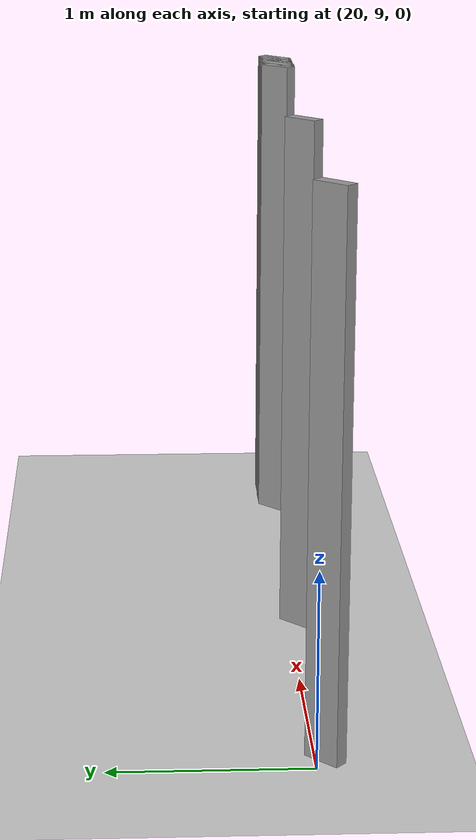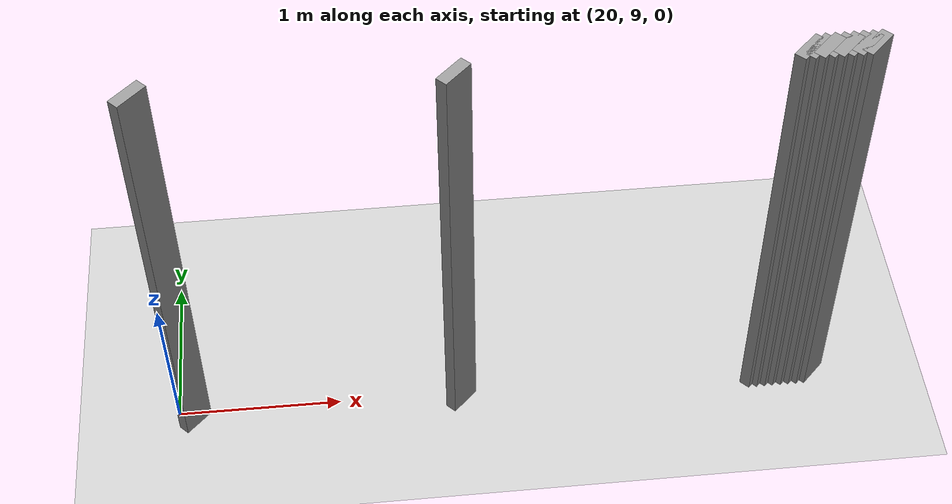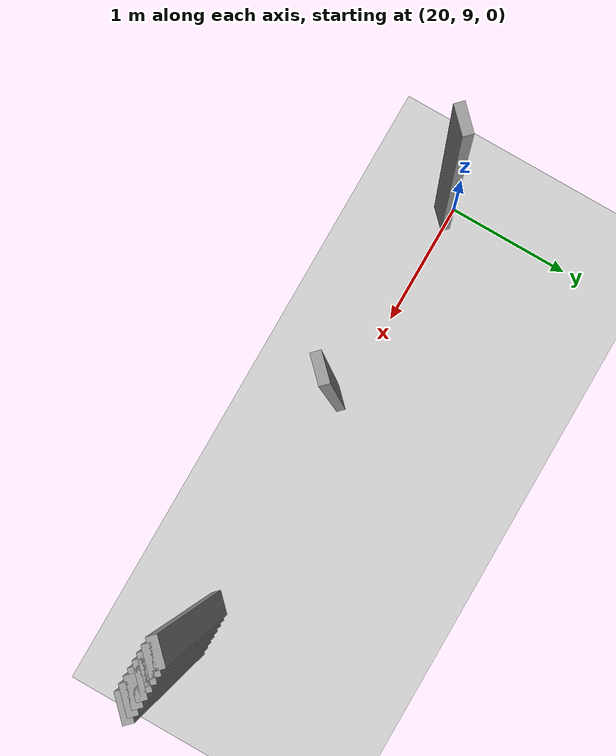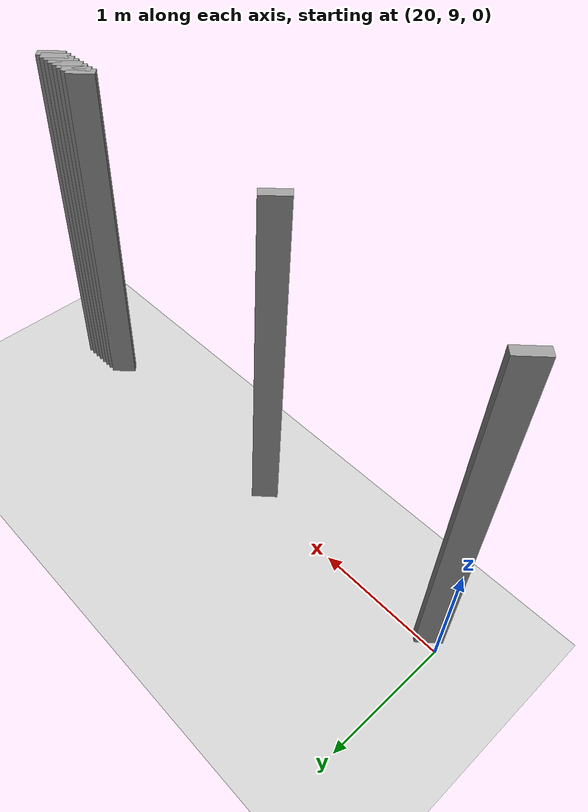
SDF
<sdf version="1.5">
 <world name="default">
  <include><uri>model://ground_plane</uri></include>
  <include><uri>model://sun</uri></include>
  <model name="grey_wall_3554">
   <static>1</static>
   <link name="link">
    <pose>20.1 8.95  1.4 0 0 -0.785398163397</pose>
    <collision name="collision"><geometry><box><size>0.0707106781187 .2  2.8</size></box></geometry></collision>
    <visual name="visual">
     <cast_shadows>0</cast_shadows>
     <geometry><box><size>0.0707106781187 .2  2.8</size></box></geometry>
     <material>
      <script>
       <uri>model://grey_wall/materials/scripts</uri>
       <uri>model://grey_wall/materials/textures</uri>
       <name>vrc/grey_wall</name>
      </script>
     </material>
    </visual>
   </link>
  </model>
  <model name="grey_wall_3555">
   <static>1</static>
   <link name="link">
    <pose>21.75 8.95  1.4 0 0 -0.785398163397</pose>
    <collision name="collision"><geometry><box><size>0.0707106781187 .2  2.8</size></box></geometry></collision>
    <visual name="visual">
     <cast_shadows>0</cast_shadows>
     <geometry><box><size>0.0707106781187 .2  2.8</size></box></geometry>
     <material>
      <script>
       <uri>model://grey_wall/materials/scripts</uri>
       <uri>model://grey_wall/materials/textures</uri>
       <name>vrc/grey_wall</name>
      </script>
     </material>
    </visual>
   </link>
  </model>
  <model name="grey_wall_3556">
   <static>1</static>
   <link name="link">
    <pose>23.6 8.95  1.4 0 0 -0.785398163397</pose>
    <collision name="collision"><geometry><box><size>0.0707106781187 .2  2.8</size></box></geometry></collision>
    <visual name="visual">
     <cast_shadows>0</cast_shadows>
     <geometry><box><size>0.0707106781187 .2  2.8</size></box></geometry>
     <material>
      <script>
       <uri>model://grey_wall/materials/scripts</uri>
       <uri>model://grey_wall/materials/textures</uri>
       <name>vrc/grey_wall</name>
      </script>
     </material>
    </visual>
   </link>
  </model>
  <model name="grey_wall_3557">
   <static>1</static>
   <link name="link">
    <pose>23.65 8.95  1.4 0 0 -0.785398163397</pose>
    <collision name="collision"><geometry><box><size>0.0707106781187 .2  2.8</size></box></geometry></collision>
    <visual name="visual">
     <cast_shadows>0</cast_shadows>
     <geometry><box><size>0.0707106781187 .2  2.8</size></box></geometry>
     <material>
      <script>
       <uri>model://grey_wall/materials/scripts</uri>
       <uri>model://grey_wall/materials/textures</uri>
       <name>vrc/grey_wall</name>
      </script>
     </material>
    </visual>
   </link>
  </model>
  <model name="grey_wall_3558">
   <static>1</static>
   <link name="link">
    <pose>23.7 8.95  1.4 0 0 -0.785398163397</pose>
    <collision name="collision"><geometry><box><size>0.0707106781187 .2  2.8</size></box></geometry></collision>
    <visual name="visual">
     <cast_shadows>0</cast_shadows>
     <geometry><box><size>0.0707106781187 .2  2.8</size></box></geometry>
     <material>
      <script>
       <uri>model://grey_wall/materials/scripts</uri>
       <uri>model://grey_wall/materials/textures</uri>
       <name>vrc/grey_wall</name>
      </script>
     </material>
    </visual>
   </link>
  </model>
  <model name="grey_wall_3559">
   <static>1</static>
   <link name="link">
    <pose>23.75 8.95  1.4 0 0 -0.785398163397</pose>
    <collision name="collision"><geometry><box><size>0.0707106781187 .2  2.8</size></box></geometry></collision>
    <visual name="visual">
     <cast_shadows>0</cast_shadows>
     <geometry><box><size>0.0707106781187 .2  2.8</size></box></geometry>
     <material>
      <script>
       <uri>model://grey_wall/materials/scripts</uri>
       <uri>model://grey_wall/materials/textures</uri>
       <name>vrc/grey_wall</name>
      </script>
     </material>
    </visual>
   </link>
  </model>
  <model name="grey_wall_3560">
   <static>1</static>
   <link name="link">
    <pose>23.8 8.95  1.4 0 0 -0.785398163397</pose>
    <collision name="collision"><geometry><box><size>0.0707106781187 .2  2.8</size></box></geometry></collision>
    <visual name="visual">
     <cast_shadows>0</cast_shadows>
     <geometry><box><size>0.0707106781187 .2  2.8</size></box></geometry>
     <material>
      <script>
       <uri>model://grey_wall/materials/scripts</uri>
       <uri>model://grey_wall/materials/textures</uri>
       <name>vrc/grey_wall</name>
      </script>
     </material>
    </visual>
   </link>
  </model>
  <model name="grey_wall_3561">
   <static>1</static>
   <link name="link">
    <pose>23.85 8.95  1.4 0 0 -0.785398163397</pose>
    <collision name="collision"><geometry><box><size>0.0707106781187 .2  2.8</size></box></geometry></collision>
    <visual name="visual">
     <cast_shadows>0</cast_shadows>
     <geometry><box><size>0.0707106781187 .2  2.8</size></box></geometry>
     <material>
      <script>
       <uri>model://grey_wall/materials/scripts</uri>
       <uri>model://grey_wall/materials/textures</uri>
       <name>vrc/grey_wall</name>
      </script>
     </material>
    </visual>
   </link>
  </model>
  <model name="grey_wall_3562">
   <static>1</static>
   <link name="link">
    <pose>23.9 8.95  1.4 0 0 -0.785398163397</pose>
    <collision name="collision"><geometry><box><size>0.0707106781187 .2  2.8</size></box></geometry></collision>
    <visual name="visual">
     <cast_shadows>0</cast_shadows>
     <geometry><box><size>0.0707106781187 .2  2.8</size></box></geometry>
     <material>
      <script>
       <uri>model://grey_wall/materials/scripts</uri>
       <uri>model://grey_wall/materials/textures</uri>
       <name>vrc/grey_wall</name>
      </script>
     </material>
    </visual>
   </link>
  </model>
  <model name="grey_wall_3563">
   <static>1</static>
   <link name="link">
    <pose>23.95 8.95  1.4 0 0 -0.785398163397</pose>
    <collision name="collision"><geometry><box><size>0.0707106781187 .2  2.8</size></box></geometry></collision>
    <visual name="visual">
     <cast_shadows>0</cast_shadows>
     <geometry><box><size>0.0707106781187 .2  2.8</size></box></geometry>
     <material>
      <script>
       <uri>model://grey_wall/materials/scripts</uri>
       <uri>model://grey_wall/materials/textures</uri>
       <name>vrc/grey_wall</name>
      </script>
     </material>
    </visual>
   </link>
  </model>
 </world>
</sdf>
